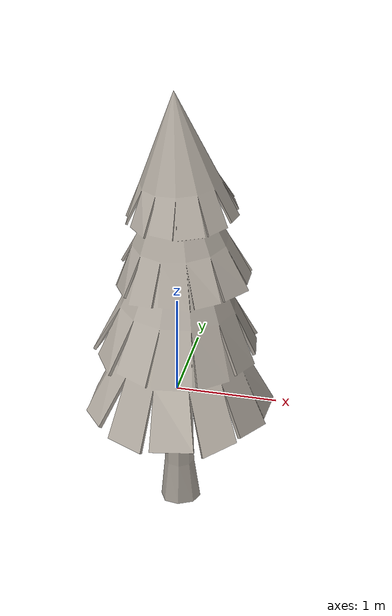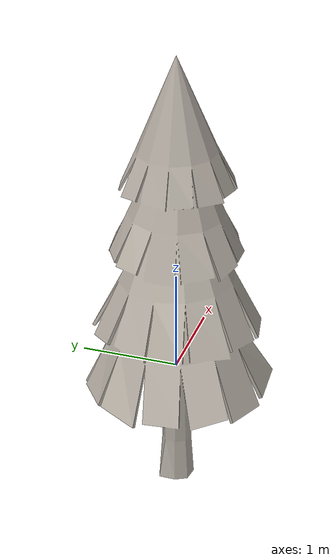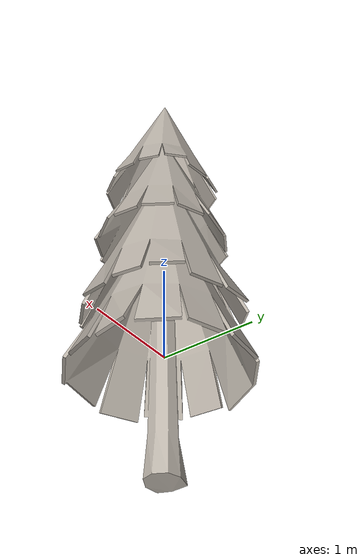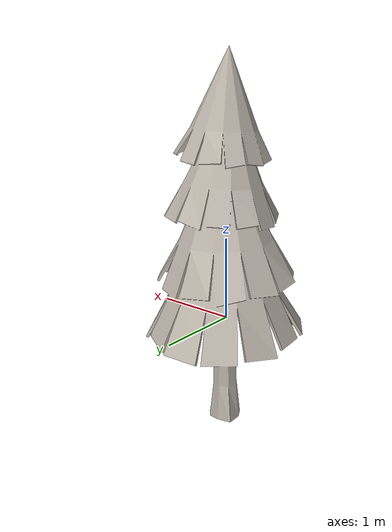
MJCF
<mujoco model="tree02">
    <asset>
        <mesh file="3D_Assets/tree2.obj" scale="0.25 0.25 0.25"/>
        <texture file="3D_Assets/tree2.png" type="2d" name="tree2" />
        <material name="tree2" reflectance="0.7" texrepeat="15 15" texture="tree2" texuniform="true"/>
    </asset>
    <worldbody>
        <body name="tree02" pos="0 0 0">
            <geom name="tree_geom" type="mesh" mesh="tree2" size="1.0 1.0 0.0" rgba=".5 .5 .5 1." material="tree2"/>
        </body>
    </worldbody>
</mujoco>
